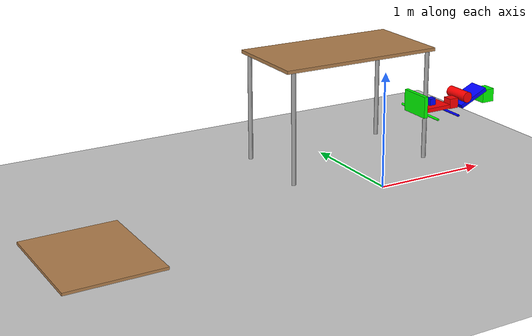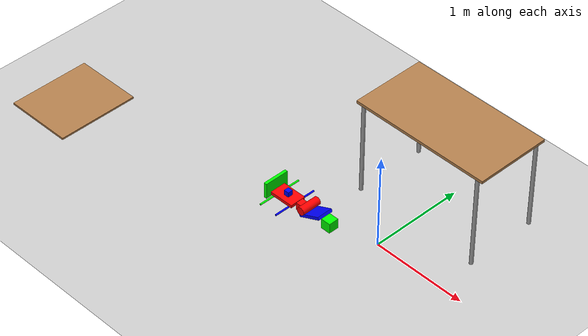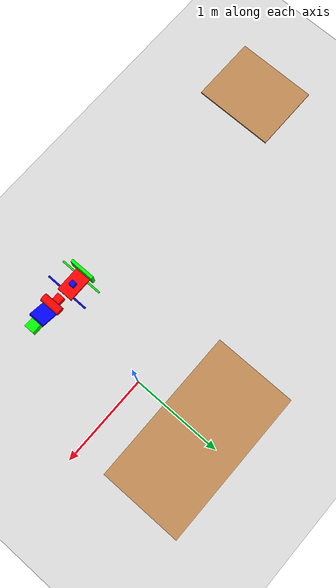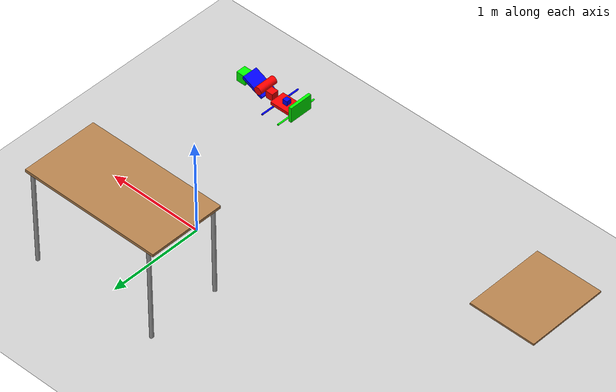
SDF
<sdf version="1.7">
 <world name="default">
  <light name="sun" type="directional">
   <pose>0 0 10 0 -0 0</pose>
   <diffuse>0.8 0.8 0.8 1</diffuse>
   <specular>0.2 0.2 0.2 1</specular>
   <attenuation>
    <range>1000</range>
    <constant>0.9</constant>
    <linear>0.01</linear>
    <quadratic>0.001</quadratic>
   </attenuation>
   <direction>-0.5 0.1 -0.9</direction>
   <spot><inner_angle>0</inner_angle><outer_angle>0</outer_angle><falloff>0</falloff></spot>
  </light>
  <model name="ground_plane">
   <static>1</static>
   <link name="link">
    <collision name="collision">
     <geometry><plane><normal>0 0 1</normal><size>100 100</size></plane></geometry>
     <surface><friction><ode><mu>100</mu><mu2>50</mu2></ode></friction></surface>
    </collision>
    <visual name="visual">
     <cast_shadows>0</cast_shadows>
     <geometry><plane><normal>0 0 1</normal><size>100 100</size></plane></geometry>
     <material>
      <script><uri>file://media/materials/scripts/gazebo.material</uri><name>Gazebo/Grey</name></script>
     </material>
    </visual>
   </link>
  </model>
  <gravity>0 0 -9.8</gravity>
  <magnetic_field>6e-06 2.3e-05 -4.2e-05</magnetic_field>
  <atmosphere type="adiabatic"/>
  <physics type="ode">
   <max_step_size>0.001</max_step_size>
   <real_time_factor>1</real_time_factor>
   <real_time_update_rate>1000</real_time_update_rate>
  </physics>
  <scene><ambient>0.4 0.4 0.4 1</ambient><background>0.7 0.7 0.7 1</background><shadows>1</shadows></scene>
  <audio><device>default</device></audio>
  <spherical_coordinates>
   <surface_model>EARTH_WGS84</surface_model>
   <latitude_deg>0</latitude_deg>
   <longitude_deg>0</longitude_deg>
   <elevation>0</elevation>
   <heading_deg>0</heading_deg>
  </spherical_coordinates>
  <model name="table">
   <static>1</static>
   <link name="link">
    <collision name="surface">
     <pose>0 0 1 0 -0 0</pose>
     <geometry><box><size>1.5 0.8 0.03</size></box></geometry>
     <surface>
      <friction><ode><mu>10</mu><mu2>5</mu2></ode></friction>
      <contact><ode><soft_cfm>0.0001</soft_cfm><soft_erp>0.4</soft_erp><kp>1e+06</kp><kd>10</kd></ode></contact>
     </surface>
    </collision>
    <visual name="visual1">
     <pose>0 0 1 0 -0 0</pose>
     <geometry><box><size>1.5 0.8 0.03</size></box></geometry>
     <material>
      <script><uri>file://media/materials/scripts/gazebo.material</uri><name>Gazebo/Wood</name></script>
     </material>
    </visual>
    <collision name="front_left_leg">
     <pose>0.68 0.38 0.5 0 -0 0</pose>
     <geometry><cylinder><radius>0.02</radius><length>1</length></cylinder></geometry>
    </collision>
    <visual name="front_left_leg">
     <pose>0.68 0.38 0.5 0 -0 0</pose>
     <geometry><cylinder><radius>0.02</radius><length>1</length></cylinder></geometry>
     <material>
      <script><uri>file://media/materials/scripts/gazebo.material</uri><name>Gazebo/Grey</name></script>
     </material>
    </visual>
    <collision name="front_right_leg">
     <pose>0.68 -0.38 0.5 0 -0 0</pose>
     <geometry><cylinder><radius>0.02</radius><length>1</length></cylinder></geometry>
    </collision>
    <visual name="front_right_leg">
     <pose>0.68 -0.38 0.5 0 -0 0</pose>
     <geometry><cylinder><radius>0.02</radius><length>1</length></cylinder></geometry>
     <material>
      <script><uri>file://media/materials/scripts/gazebo.material</uri><name>Gazebo/Grey</name></script>
     </material>
    </visual>
    <collision name="back_right_leg">
     <pose>-0.68 -0.38 0.5 0 -0 0</pose>
     <geometry><cylinder><radius>0.02</radius><length>1</length></cylinder></geometry>
    </collision>
    <visual name="back_right_leg">
     <pose>-0.68 -0.38 0.5 0 -0 0</pose>
     <geometry><cylinder><radius>0.02</radius><length>1</length></cylinder></geometry>
     <material>
      <script><uri>file://media/materials/scripts/gazebo.material</uri><name>Gazebo/Grey</name></script>
     </material>
    </visual>
    <collision name="back_left_leg">
     <pose>-0.68 0.38 0.5 0 -0 0</pose>
     <geometry><cylinder><radius>0.02</radius><length>1</length></cylinder></geometry>
    </collision>
    <visual name="back_left_leg">
     <pose>-0.68 0.38 0.5 0 -0 0</pose>
     <geometry><cylinder><radius>0.02</radius><length>1</length></cylinder></geometry>
     <material>
      <script><uri>file://media/materials/scripts/gazebo.material</uri><name>Gazebo/Grey</name></script>
     </material>
    </visual>
    <inertial>
     <inertia><ixx>1</ixx><ixy>0</ixy><ixz>0</ixz><iyy>1</iyy><iyz>0</iyz><izz>1</izz></inertia>
     <mass>50</mass>
    </inertial>
   </link>
   <pose>0.056083 0.801191 -1.2e-05 0 -0 2.5e-05</pose>
  </model>
  <plugin name="gazebo_link_attacher" filename="libgazebo_link_attacher.so"/>
  <plugin name="gazebo_ros_state" filename="libgazebo_ros_state.so">
   <namespace>/gazebo</namespace>
   <update_rate>100</update_rate>
  </plugin>
  <model name="cube_b">
   <link name="link_2">
    <inertial>
     <mass>2</mass>
     <inertia>
      <ixx>0.000833</ixx>
      <ixy>0</ixy>
      <ixz>0</ixz>
      <iyy>0.000833</iyy>
      <iyz>0</iyz>
      <izz>0.000833</izz>
     </inertia>
    </inertial>
    <visual name="visual">
     <geometry><box><size>0.05 0.05 0.05</size></box></geometry>
     <material>
      <lighting>1</lighting>
      <script><uri>file://media/materials/scripts/gazebo.material</uri><name>Gazebo/Grey</name></script>
      <ambient>0 0 1 1</ambient>
      <diffuse>0 0 1 1</diffuse>
      <specular>0 0 0 1</specular>
      <emissive>0 0 0 1</emissive>
      <shader type="vertex"><normal_map>__default__</normal_map></shader>
     </material>
    </visual>
    <collision name="collision">
     <geometry><box><size>0.05 0.05 0.05</size></box></geometry>
     <surface>
      <friction>
       <ode><mu>0.8</mu><mu2>0.8</mu2><fdir1>0 0 0</fdir1><slip1>0</slip1><slip2>0</slip2></ode>
       <torsional>
        <coefficient>1</coefficient>
        <patch_radius>0</patch_radius>
        <surface_radius>0</surface_radius>
        <use_patch_radius>1</use_patch_radius>
        <ode><slip>0</slip></ode>
       </torsional>
      </friction>
      <bounce><restitution_coefficient>0</restitution_coefficient><threshold>1e+06</threshold></bounce>
      <contact>
       <collide_without_contact>0</collide_without_contact>
       <collide_without_contact_bitmask>1</collide_without_contact_bitmask>
       <collide_bitmask>1</collide_bitmask>
       <ode>
        <soft_cfm>0.0001</soft_cfm>
        <soft_erp>0.4</soft_erp>
        <kp>1e+06</kp>
        <kd>10</kd>
        <max_vel>0.01</max_vel>
        <min_depth>0</min_depth>
       </ode>
      </contact>
     </surface>
    </collision>
   </link>
   <static>0</static>
   <allow_auto_disable>0</allow_auto_disable>
   <pose>-0.220127 -0.897565 1.03249 -1.57004 -0.004009 0.000651</pose>
  </model>
  <model name="cube_g">
   <link name="link_2">
    <inertial>
     <mass>2</mass>
     <inertia>
      <ixx>0.00166667</ixx>
      <iyy>0.00166667</iyy>
      <izz>0.00166667</izz>
      <ixy>0</ixy>
      <ixz>0</ixz>
      <iyz>0</iyz>
     </inertia>
    </inertial>
    <visual name="visual">
     <geometry><box><size>0.1 0.1 0.1</size></box></geometry>
     <material>
      <lighting>1</lighting>
      <script><uri>file://media/materials/scripts/gazebo.material</uri><name>Gazebo/Grey</name></script>
      <ambient>0 1 0 1</ambient>
      <diffuse>0 1 0 1</diffuse>
      <specular>0 0 0 1</specular>
      <emissive>0 0 0 1</emissive>
      <shader type="vertex"><normal_map>__default__</normal_map></shader>
     </material>
    </visual>
    <collision name="collision">
     <geometry><box><size>0.1 0.1 0.1</size></box></geometry>
     <surface>
      <friction>
       <ode><mu>0.8</mu><mu2>0.8</mu2><fdir1>0 0 0</fdir1><slip1>0</slip1><slip2>0</slip2></ode>
       <torsional>
        <coefficient>1</coefficient>
        <patch_radius>0</patch_radius>
        <surface_radius>0</surface_radius>
        <use_patch_radius>1</use_patch_radius>
        <ode><slip>0</slip></ode>
       </torsional>
      </friction>
      <bounce><restitution_coefficient>0</restitution_coefficient><threshold>1e+06</threshold></bounce>
      <contact>
       <collide_without_contact>0</collide_without_contact>
       <collide_without_contact_bitmask>1</collide_without_contact_bitmask>
       <collide_bitmask>1</collide_bitmask>
       <ode>
        <soft_cfm>0.0001</soft_cfm>
        <soft_erp>0.4</soft_erp>
        <kp>1e+06</kp>
        <kd>10</kd>
        <max_vel>0.01</max_vel>
        <min_depth>0</min_depth>
       </ode>
      </contact>
     </surface>
    </collision>
   </link>
   <static>0</static>
   <allow_auto_disable>0</allow_auto_disable>
   <pose>0.279398 -0.903917 1.01273 0.00116 -0.004118 -0.00246</pose>
  </model>
  <model name="cube_r">
   <link name="link_2">
    <inertial>
     <mass>2</mass>
     <inertia>
      <ixx>0.0009375</ixx>
      <ixy>0</ixy>
      <ixz>0</ixz>
      <iyy>0.0009375</iyy>
      <iyz>0</iyz>
      <izz>0.0009375</izz>
     </inertia>
    </inertial>
    <visual name="visual">
     <geometry><box><size>0.075 0.075 0.075</size></box></geometry>
     <material>
      <lighting>1</lighting>
      <script><uri>file://media/materials/scripts/gazebo.material</uri><name>Gazebo/Grey</name></script>
      <ambient>1 0 0 1</ambient>
      <diffuse>1 0 0 1</diffuse>
      <specular>0 0 0 1</specular>
      <emissive>0 0 0 1</emissive>
      <shader type="vertex"><normal_map>__default__</normal_map></shader>
     </material>
    </visual>
    <collision name="collision">
     <geometry><box><size>0.075 0.075 0.075</size></box></geometry>
     <surface>
      <friction>
       <ode><mu>0.8</mu><mu2>0.8</mu2><fdir1>0 0 0</fdir1><slip1>0</slip1><slip2>0</slip2></ode>
       <torsional>
        <coefficient>1</coefficient>
        <patch_radius>0</patch_radius>
        <surface_radius>0</surface_radius>
        <use_patch_radius>1</use_patch_radius>
        <ode><slip>0</slip></ode>
       </torsional>
      </friction>
      <bounce><restitution_coefficient>0</restitution_coefficient><threshold>1e+06</threshold></bounce>
      <contact>
       <collide_without_contact>0</collide_without_contact>
       <collide_without_contact_bitmask>1</collide_without_contact_bitmask>
       <collide_bitmask>1</collide_bitmask>
       <ode>
        <soft_cfm>0.0001</soft_cfm>
        <soft_erp>0.4</soft_erp>
        <kp>1e+06</kp>
        <kd>10</kd>
        <max_vel>0.01</max_vel>
        <min_depth>0</min_depth>
       </ode>
      </contact>
     </surface>
    </collision>
   </link>
   <static>0</static>
   <allow_auto_disable>0</allow_auto_disable>
   <pose>-0.039071 -0.906366 0.998916 1.56664 -0.001102 1.57254</pose>
  </model>
  <model name="cylinder_r">
   <link name="link_0">
    <inertial>
     <mass>0.2</mass>
     <inertia>
      <ixx>0.000747</ixx>
      <ixy>0</ixy>
      <ixz>0</ixz>
      <iyy>0.000747</iyy>
      <iyz>0</iyz>
      <izz>0.00016</izz>
     </inertia>
    </inertial>
    <visual name="visual">
     <geometry><cylinder><radius>0.04</radius><length>0.2</length></cylinder></geometry>
     <material>
      <lighting>1</lighting>
      <script><uri>file://media/materials/scripts/gazebo.material</uri><name>Gazebo/Grey</name></script>
      <ambient>1 0 0 1</ambient>
      <diffuse>1 0 0 1</diffuse>
      <specular>0 0 0 1</specular>
      <emissive>0 0 0 1</emissive>
      <shader type="vertex"><normal_map>__default__</normal_map></shader>
     </material>
    </visual>
    <collision name="collision">
     <geometry><cylinder><radius>0.04</radius><length>0.2</length></cylinder></geometry>
     <surface>
      <friction>
       <ode><mu>0.5</mu><mu2>0.5</mu2><fdir1>0 0 0</fdir1><slip1>0</slip1><slip2>0</slip2></ode>
       <torsional>
        <coefficient>1</coefficient>
        <patch_radius>0</patch_radius>
        <surface_radius>0</surface_radius>
        <use_patch_radius>1</use_patch_radius>
        <ode><slip>0</slip></ode>
       </torsional>
      </friction>
      <bounce><restitution_coefficient>0</restitution_coefficient><threshold>1e+06</threshold></bounce>
      <contact>
       <collide_without_contact>0</collide_without_contact>
       <collide_without_contact_bitmask>1</collide_without_contact_bitmask>
       <collide_bitmask>1</collide_bitmask>
       <ode>
        <soft_cfm>0.0001</soft_cfm>
        <soft_erp>0.4</soft_erp>
        <kp>1e+06</kp>
        <kd>10</kd>
        <max_vel>0.01</max_vel>
        <min_depth>0</min_depth>
       </ode>
      </contact>
     </surface>
    </collision>
   </link>
   <static>0</static>
   <allow_auto_disable>0</allow_auto_disable>
   <pose>0.036061 -0.906661 1.05018 -1.54776 1.47278 -3.11354</pose>
  </model>
  <model name="cylinder_b">
   <link name="link_0">
    <inertial>
     <mass>0.2</mass>
     <inertia><ixx>0.00331</ixx><ixy>0</ixy><ixz>0</ixz><iyy>0.00331</iyy><iyz>0</iyz><izz>7.11e-06</izz></inertia>
    </inertial>
    <visual name="visual">
     <geometry><cylinder><radius>0.00843157</radius><length>0.445034</length></cylinder></geometry>
     <material>
      <lighting>1</lighting>
      <ambient>0 0 1 1</ambient>
      <diffuse>0 0 1 1</diffuse>
      <specular>0.1 0.1 0.1 1</specular>
      <emissive>0 0 0 1</emissive>
      <shader type="vertex"><normal_map>__default__</normal_map></shader>
     </material>
    </visual>
    <collision name="collision">
     <geometry><cylinder><radius>0.008432</radius><length>0.445034</length></cylinder></geometry>
     <surface>
      <friction>
       <ode><mu>0.4</mu><mu2>0.4</mu2><fdir1>0 0 0</fdir1><slip1>0</slip1><slip2>0</slip2></ode>
       <torsional>
        <coefficient>1</coefficient>
        <patch_radius>0</patch_radius>
        <surface_radius>0</surface_radius>
        <use_patch_radius>1</use_patch_radius>
        <ode><slip>0</slip></ode>
       </torsional>
      </friction>
      <bounce><restitution_coefficient>0</restitution_coefficient><threshold>1e+06</threshold></bounce>
      <contact>
       <collide_without_contact>0</collide_without_contact>
       <collide_without_contact_bitmask>1</collide_without_contact_bitmask>
       <collide_bitmask>1</collide_bitmask>
       <ode>
        <soft_cfm>0.0001</soft_cfm>
        <soft_erp>0.4</soft_erp>
        <kp>1e+06</kp>
        <kd>10</kd>
        <max_vel>0.01</max_vel>
        <min_depth>0</min_depth>
       </ode>
      </contact>
     </surface>
    </collision>
   </link>
   <static>0</static>
   <allow_auto_disable>0</allow_auto_disable>
   <pose>-0.13634 -0.902731 0.969434 1.57403 1.23634 -0.003149</pose>
  </model>
  <model name="cylinder_g">
   <link name="link_0">
    <inertial>
     <mass>0.2</mass>
     <inertia><ixx>0.00331</ixx><ixy>0</ixy><ixz>0</ixz><iyy>0.00331</iyy><iyz>0</iyz><izz>7.11e-06</izz></inertia>
    </inertial>
    <visual name="visual">
     <geometry><cylinder><radius>0.00843157</radius><length>0.445034</length></cylinder></geometry>
     <material>
      <lighting>1</lighting>
      <ambient>0 1 0 1</ambient>
      <diffuse>0 1 0 1</diffuse>
      <specular>0.1 0.1 0.1 1</specular>
      <emissive>0 0 0 1</emissive>
      <shader type="vertex"><normal_map>__default__</normal_map></shader>
     </material>
    </visual>
    <collision name="collision">
     <geometry><cylinder><radius>0.008432</radius><length>0.445034</length></cylinder></geometry>
     <surface>
      <friction>
       <ode><mu>0.5</mu><mu2>0.5</mu2><fdir1>0 0 0</fdir1><slip1>0</slip1><slip2>0</slip2></ode>
       <torsional>
        <coefficient>1</coefficient>
        <patch_radius>0</patch_radius>
        <surface_radius>0</surface_radius>
        <use_patch_radius>1</use_patch_radius>
        <ode><slip>0</slip></ode>
       </torsional>
      </friction>
      <bounce><restitution_coefficient>0</restitution_coefficient><threshold>1e+06</threshold></bounce>
      <contact>
       <collide_without_contact>0</collide_without_contact>
       <collide_without_contact_bitmask>1</collide_without_contact_bitmask>
       <collide_bitmask>1</collide_bitmask>
       <ode>
        <soft_cfm>0.0001</soft_cfm>
        <soft_erp>0.4</soft_erp>
        <kp>1e+06</kp>
        <kd>10</kd>
        <max_vel>0.01</max_vel>
        <min_depth>0</min_depth>
       </ode>
      </contact>
     </surface>
    </collision>
   </link>
   <static>0</static>
   <allow_auto_disable>0</allow_auto_disable>
   <pose>-0.322683 -0.902685 0.968672 1.57406 1.23511 -0.00222</pose>
  </model>
  <model name="cuboid_r">
   <link name="link">
    <inertial>
     <mass>2</mass>
     <inertia><ixx>0.00442</ixx><iyy>0.0101</iyy><izz>0.0143</izz><ixy>0</ixy><ixz>0</ixz><iyz>0</iyz></inertia>
    </inertial>
    <visual name="visual">
     <geometry><box><size>0.245 0.16 0.03</size></box></geometry>
     <material><ambient>1 0 0 1</ambient><diffuse>1 0 0 1</diffuse><specular>0.1 0.1 0.1 1</specular></material>
    </visual>
    <collision name="collision">
     <geometry><box><size>0.245 0.16 0.03</size></box></geometry>
     <surface>
      <friction>
       <ode><mu>0.6</mu><mu2>0.6</mu2><fdir1>0 0 0</fdir1><slip1>0</slip1><slip2>0</slip2></ode>
       <torsional>
        <coefficient>1</coefficient>
        <patch_radius>0</patch_radius>
        <surface_radius>0</surface_radius>
        <use_patch_radius>1</use_patch_radius>
        <ode><slip>0</slip></ode>
       </torsional>
      </friction>
      <bounce><restitution_coefficient>0</restitution_coefficient><threshold>1e+06</threshold></bounce>
      <contact>
       <collide_without_contact>0</collide_without_contact>
       <collide_without_contact_bitmask>1</collide_without_contact_bitmask>
       <collide_bitmask>1</collide_bitmask>
       <ode>
        <soft_cfm>0.0001</soft_cfm>
        <soft_erp>0.4</soft_erp>
        <kp>1e+06</kp>
        <kd>10</kd>
        <max_vel>0.01</max_vel>
        <min_depth>0</min_depth>
       </ode>
      </contact>
     </surface>
    </collision>
   </link>
   <static>0</static>
   <allow_auto_disable>0</allow_auto_disable>
   <pose>-0.225619 -0.898057 0.992485 3.1408 0.004043 -3.13549</pose>
  </model>
  <model name="cuboid_g">
   <link name="link">
    <inertial>
     <mass>2</mass>
     <inertia><ixx>0.00442</ixx><iyy>0.0101</iyy><izz>0.0143</izz><ixy>0</ixy><ixz>0</ixz><iyz>0</iyz></inertia>
    </inertial>
    <visual name="visual">
     <geometry><box><size>0.245 0.16 0.03</size></box></geometry>
     <material><ambient>0 1 0 1</ambient><diffuse>0 1 0 1</diffuse><specular>0.1 0.1 0.1 1</specular></material>
    </visual>
    <collision name="collision">
     <geometry><box><size>0.245 0.16 0.03</size></box></geometry>
     <surface>
      <friction>
       <ode><mu>0.6</mu><mu2>0.6</mu2><fdir1>0 0 0</fdir1><slip1>0</slip1><slip2>0</slip2></ode>
       <torsional>
        <coefficient>1</coefficient>
        <patch_radius>0</patch_radius>
        <surface_radius>0</surface_radius>
        <use_patch_radius>1</use_patch_radius>
        <ode><slip>0</slip></ode>
       </torsional>
      </friction>
      <bounce><restitution_coefficient>0</restitution_coefficient><threshold>1e+06</threshold></bounce>
      <contact>
       <collide_without_contact>0</collide_without_contact>
       <collide_without_contact_bitmask>1</collide_without_contact_bitmask>
       <collide_bitmask>1</collide_bitmask>
       <ode>
        <soft_cfm>0.0001</soft_cfm>
        <soft_erp>0.4</soft_erp>
        <kp>1e+06</kp>
        <kd>10</kd>
        <max_vel>0.01</max_vel>
        <min_depth>0</min_depth>
       </ode>
      </contact>
     </surface>
    </collision>
   </link>
   <static>0</static>
   <allow_auto_disable>0</allow_auto_disable>
   <pose>-0.363845 -0.907362 1.04007 -1.56663 0.001095 -1.57124</pose>
  </model>
  <model name="cuboid_b">
   <link name="link">
    <inertial>
     <mass>2</mass>
     <inertia><ixx>0.00442</ixx><iyy>0.0101</iyy><izz>0.0143</izz><ixy>0</ixy><ixz>0</ixz><iyz>0</iyz></inertia>
    </inertial>
    <visual name="visual">
     <geometry><box><size>0.245 0.16 0.03</size></box></geometry>
     <material><ambient>0 0 1 1</ambient><diffuse>0 0 1 1</diffuse><specular>0.1 0.1 0.1 1</specular></material>
    </visual>
    <collision name="collision">
     <geometry><box><size>0.245 0.16 0.03</size></box></geometry>
     <surface>
      <friction>
       <ode><mu>0.6</mu><mu2>0.6</mu2><fdir1>0 0 0</fdir1><slip1>0</slip1><slip2>0</slip2></ode>
       <torsional>
        <coefficient>1</coefficient>
        <patch_radius>0</patch_radius>
        <surface_radius>0</surface_radius>
        <use_patch_radius>1</use_patch_radius>
        <ode><slip>0</slip></ode>
       </torsional>
      </friction>
      <bounce><restitution_coefficient>0</restitution_coefficient><threshold>1e+06</threshold></bounce>
      <contact>
       <collide_without_contact>0</collide_without_contact>
       <collide_without_contact_bitmask>1</collide_without_contact_bitmask>
       <collide_bitmask>1</collide_bitmask>
       <ode>
        <soft_cfm>0.0001</soft_cfm>
        <soft_erp>0.4</soft_erp>
        <kp>1e+06</kp>
        <kd>10</kd>
        <max_vel>0.01</max_vel>
        <min_depth>0</min_depth>
       </ode>
      </contact>
     </surface>
    </collision>
   </link>
   <static>0</static>
   <allow_auto_disable>0</allow_auto_disable>
   <pose>0.116271 -0.905178 1.02673 -0.001223 0.433855 3.13891</pose>
  </model>
  <model name="workspace">
   <link name="link">
    <inertial>
     <mass>100</mass>
     <inertia><ixx>6.02417</ixx><ixy>0</ixy><ixz>0</ixz><iyy>4.08667</iyy><iyz>0</iyz><izz>10.10417</izz></inertia>
    </inertial>
    <visual name="visual">
     <geometry><box><size>0.70 0.85 0.02</size></box></geometry>
     <material>
      <script><name>Gazebo/Wood</name><uri>file://media/materials/scripts/gazebo.material</uri></script>
      <shader type="pixel"/>
     </material>
    </visual>
    <collision name="collision">
     <geometry><box><size>0.70 0.85 0.02</size></box></geometry>
     <surface>
      <friction>
       <ode><mu>100</mu><mu2>50</mu2><fdir1>0 0 0</fdir1><slip1>0</slip1><slip2>0</slip2></ode>
       <torsional>
        <coefficient>1</coefficient>
        <patch_radius>0</patch_radius>
        <surface_radius>0</surface_radius>
        <use_patch_radius>1</use_patch_radius>
        <ode><slip>0</slip></ode>
       </torsional>
      </friction>
      <bounce><restitution_coefficient>0</restitution_coefficient><threshold>1e+06</threshold></bounce>
      <contact>
       <collide_without_contact>0</collide_without_contact>
       <collide_without_contact_bitmask>1</collide_without_contact_bitmask>
       <collide_bitmask>1</collide_bitmask>
       <ode>
        <soft_cfm>0.0001</soft_cfm>
        <soft_erp>0.2</soft_erp>
        <kp>1e+13</kp>
        <kd>10</kd>
        <max_vel>0.01</max_vel>
        <min_depth>0</min_depth>
       </ode>
       <bullet>
        <split_impulse>1</split_impulse>
        <split_impulse_penetration_threshold>-0.01</split_impulse_penetration_threshold>
        <soft_cfm>0</soft_cfm>
        <soft_erp>0.2</soft_erp>
        <kp>1e+13</kp>
        <kd>1</kd>
       </bullet>
      </contact>
     </surface>
    </collision>
   </link>
   <static>1</static>
   <pose>-2.95697 -0.997851 0.462568 0.001125 -0.004154 -1.1e-05</pose>
  </model>
 </world>
</sdf>
